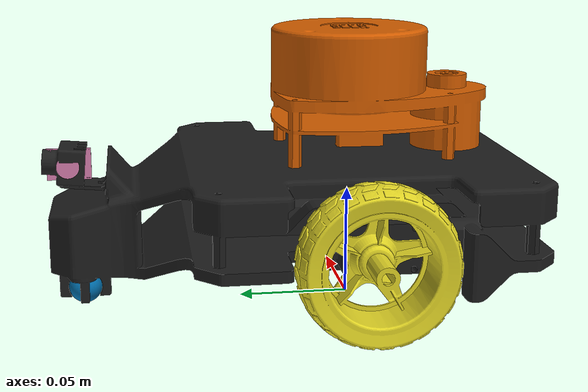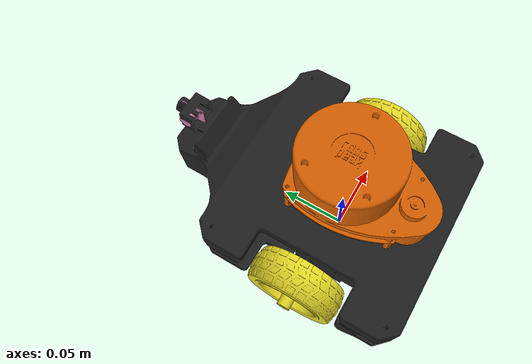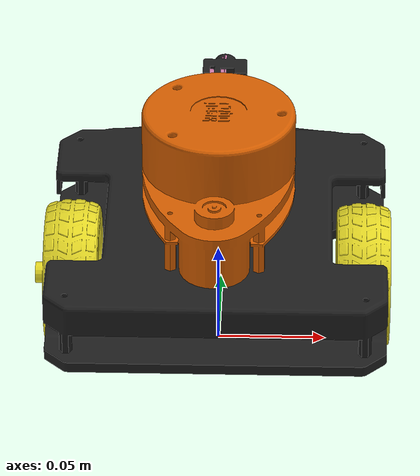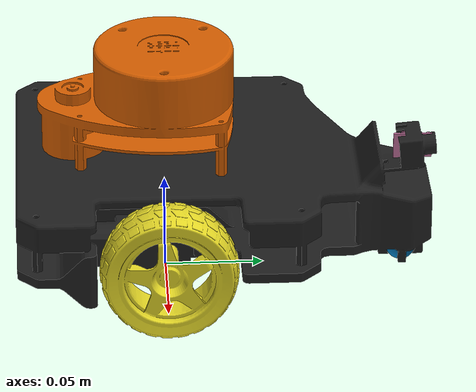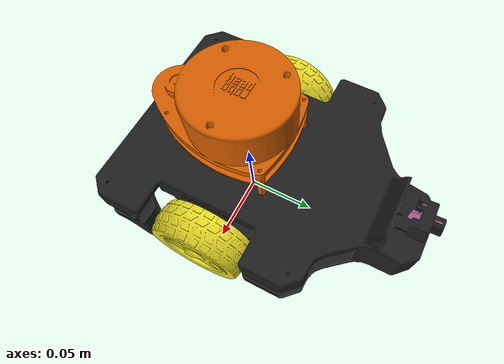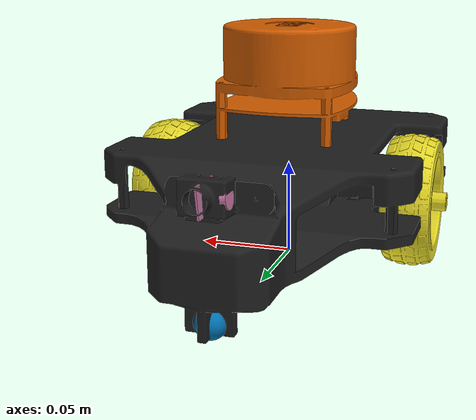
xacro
<?xml version="1.0"?>
<robot xmlns:xacro="http://www.ros.org/wiki/xacro" name="Putang">
    <xacro:include filename="$(find robot_description)/urdf/properties.xacro"/>
    <xacro:include filename="$(find robot_description)/urdf/chassis.xacro"/>
    <xacro:include filename="$(find robot_description)/urdf/wheel.xacro"/>
    <xacro:include filename="$(find robot_description)/urdf/caster.xacro"/>
    <xacro:include filename="$(find robot_description)/urdf/lidar.xacro"/>
    <xacro:include filename="$(find robot_description)/urdf/camera.xacro"/>
    <xacro:chassis/>
    <xacro:wheel
        name="left"
        translation="${WHEEL_SEPARATION /2} 0 0"
        rotation="0 0 ${PI}"
        parent="base_link"/>
    <xacro:wheel
        name="right"
        translation="${-WHEEL_SEPARATION /2} 0 0"
        rotation="0 0 ${PI}"
        parent="base_link"/>
    <xacro:caster
        name="ball"
        translation="0 0.121 -0.027"
        rotation="0 0 0"
        parent="base_link"/>
    <xacro:lidar_a
        translation="0 0 0.080"
        rotation="0 0 0"
        parent="base_link"/>
    <xacro:camera_a
        translation="0 0.126 0.0305"
        rotation="${PI/36} 0 ${PI/2}"
        parent="base_link"/>
    <gazebo>
        <plugin filename="libgazebo_ros_diff_drive.so" name="differential_drive_controller">
            <robotNamespace>/Putang</robotNamespace>
            <legacyMode>false</legacyMode>
            <alwaysOn>true</alwaysOn>
            <updateRate>50</updateRate>
            <leftJoint>left_wheel_joint</leftJoint>
            <rightJoint>right_wheel_joint</rightJoint>
            <wheelSeparation>${WHEEL_SEPARATION}</wheelSeparation>
            <wheelDiameter>${RB_WHEEL_R*2}</wheelDiameter>
            <torque>10</torque>
            <commandTopic>cmd_vel</commandTopic>
            <odometryTopic>odom</odometryTopic>
            <odometryFrame>odom</odometryFrame>
            <robotBaseFrame>base_footprint</robotBaseFrame>
            <publishWheelTF>false </publishWheelTF>
            <publishOdomTF>true</publishOdomTF>
            <publishWheelJointState>false</publishWheelJointState>
        </plugin>
    </gazebo>
</robot>

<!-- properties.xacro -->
<robot xmlns:xacro="http://www.ros.org/wiki/xacro" >

    <xacro:property name="PI" value = "3.1415926535897931"/>
    <xacro:property name="WHEEL_RADIUS" value = "0.035"/>

    <!--joint properties-->
    <xacro:property name="U_MAX" value="10.0"/>
    <xacro:property name="V_MAX" value="20.0"/>
    <xacro:property name="WHEEL_JOINT_DAMP" value="0.3"/>
    <xacro:property name="WHEEL_SEPARATION" value="0.135"/>
    <xacro:property name="RB_WHEEL_R" value="0.070"/>
    <xacro:property name="length_WHEEL" value="0.030"/>
    length

</robot>

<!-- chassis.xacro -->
<robot name="r_chassis" xmlns:xacro="http://www.ros.org/wiki/xacro">

    <xacro:include filename="$(find robot_description)/urdf/properties.xacro"/>

    <xacro:macro name="chassis" >
        <link name="base_footprint"/>

        <joint name="base_footprint_to_base_link" type = "fixed">
            <parent link="base_footprint"/>
            <child link="base_link"/>
            <origin xyz="0.0 0.0 0.035" rpy="0.0 0.0 0.0"/>
        </joint>

        <link name="base_link">
            <visual>
                <origin xyz="0 0 0" rpy="0.0 0.0 0.0"/>
                <geometry>
                    <mesh filename="package://robot_description/Mash/base_link.STL" scale="1 1 1"/>
                </geometry>
            </visual>
            <inertial>
                <origin xyz="0.0 0.0 0.0" rpy="0.0 0.0 0.0" />
                <mass value="0.83145" />
                <inertia
                   	ixx = "0.00306"	ixy = "0.00000"	ixz = "0.00000"
	                iyx = "0.00000"	iyy = "0.00141"	iyz = "0.00007"
                    izx = "0.00000"	izy = "0.00007"	izz = "0.00388" />
            </inertial>
            <collision>
                <!-- chassis collision -->
                <origin xyz="0.0 0.0 0" rpy="0.0 0.0 0"/>
                <geometry>
                    <mesh filename="package://robot_description/Mash/base_link.STL" scale="1 1 1"/>
                </geometry>
            </collision>
        </link>
        <gazebo reference="base_link">
            <material>Gazebo/Black</material>
        </gazebo>
    </xacro:macro>

</robot>

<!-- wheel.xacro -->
<robot xmlns:xacro="http://www.ros.org/wiki/xacro" name="r_wheel">
    <xacro:include filename="$(find robot_description)/urdf/properties.xacro"/>
    <xacro:macro name="wheel" params="name translation rotation parent">
        <link name="${name}_wheel">
            <visual>
                <origin xyz="0 0 0" rpy="0 0 0"/>
                <geometry>
                    <mesh filename="package://robot_description/Mash/WL_Link.STL" scale="1 1 1"/>
                </geometry>
            </visual>

            <collision>
                <origin xyz="0.0 0.0 0" rpy="0.0 ${PI/2} 0" />
                <geometry>
                    <cylinder radius="${RB_WHEEL_R/2}" length="${length_WHEEL}" />
                </geometry>
            </collision>
            <inertial>
                <origin xyz="0.0 0.0 0.0" rpy="0.0 0.0 0.0" />
                <mass value="0.02668" />
                <inertia
                    ixx = "0.00002"	ixy = "0.00000"	ixz = "0.00000"
	                iyx = "0.00000"	iyy = "0.00001"	iyz = "0.00000"
	                izx = "0.00000"	izy = "0.00000"	izz = "0.00001" />
            </inertial>
        </link>
        <joint name="${name}_wheel_joint" type="continuous">
            <origin xyz="${translation}" rpy="${rotation}"/>
            <parent link="${parent}"/>
            <child link="${name}_wheel"/>
            <axis xyz="1 0 0"/>
            <limit effort="${U_MAX}" velocity="${V_MAX}"/>
            <dynamics damping="${WHEEL_JOINT_DAMP}"/>

        </joint>
        <gazebo reference="${name}_wheel">
            <material>Gazebo/Yellow</material>
        </gazebo>
    </xacro:macro>
</robot>

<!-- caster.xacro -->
<robot xmlns:xacro="http://www.ros.org/wiki/xacro" name="Caster">
    <xacro:include filename="$(find robot_description)/urdf/properties.xacro"/>
    <xacro:macro name="caster" params="name translation rotation parent">
        <link name="${name}_caster">
            <visual>
                <origin xyz="0 0 0" rpy="0 0 0"/>
                <geometry>
                    <mesh filename="package://robot_description/Mash/Caster_Link.STL" scale="1 1 1"/>
                </geometry>
            </visual>
            <collision>
                <!-- ball wheel collision -->
                <origin xyz="0.0 0.0 0.0" rpy="0.0 0.0 0.0"/>
                <geometry>
                    <mesh filename="package://robot_description/Mash/Caster_Link.STL" scale="1 1 1"/>
                </geometry>
            </collision>
            <inertial>
                <origin xyz="0.0 0.0 0.0" rpy="0.0 0.0 0.0" />
                <mass value="0.00177" />
                <inertia ixx="0.0" ixy="0.0" ixz="0.0" iyy="0.0" iyz="0.0" izz="0.0" />
            </inertial>
        </link>
        <joint name="${name}_caster_joint" type="fixed">
            <origin xyz="${translation}" rpy="${rotation}"/>
            <parent link="${parent}"/>
            <child link="${name}_caster"/>
            <axis xyz="0 0 0"/>
            <limit effort="0" velocity="0"/>

        </joint>
    </xacro:macro>
</robot>

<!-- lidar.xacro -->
<robot xmlns:xacro="http://www.ros.org/wiki/xacro" name="r_lidar">
    <xacro:include filename="$(find robot_description)/urdf/properties.xacro"/>
    <xacro:macro name="lidar_a" params="translation rotation parent ">
        <link name="lidar">
            <inertial>
                <origin xyz="0.0 0.0 0.0" rpy="0.0 0.0 0.0" />
                <mass value="0.1" />
                <inertia
                    ixx = "0.00123"	ixy = "0.00001"	ixz = "0.00001"
	                iyx = "0.00001"	iyy = "0.00082"	iyz = "0.00027"
	                izx = "0.00001"	izy = "0.00027"	izz = "0.00116"/>
            </inertial>
            <collision>
                <!-- lidar collision -->
                <origin xyz="0.0 0.0 0.0" rpy="0.0 0.0 0.0"/>
                <geometry>
                    <mesh filename="package://robot_description/Mash/lidar_Link.STL" scale="1 1 1"/>
                </geometry>
            </collision>
            <visual>
                <origin xyz="0 0 0" rpy="0 0 0"/>
                <geometry>
                    <mesh filename="package://robot_description/Mash/lidar_Link.STL" scale="1 1 1"/>
                </geometry>
            </visual>
        </link>
        <joint name="chassis_lidar" type="fixed">
            <origin xyz="${translation}" rpy="${rotation}" />
            <parent link="${parent}" />
            <child link="lidar" />
        </joint>
        <!-- hokuyo -->
        <gazebo reference="lidar">
            <sensor type="ray" name="head_hokuyo_sensor">
            <pose>0 0 0 0 0 0</pose>
            <visualize>true</visualize>
            <update_rate>40</update_rate>
            <ray>
                <scan>
                    <horizontal>
                        <samples>720</samples>
                        <resolution>1</resolution>
                        <min_angle>${-PI}</min_angle>
                        <max_angle>${PI}</max_angle>
                    </horizontal>
                </scan>
                <range>
                    <min>0.10</min>
                    <max>5.0</max>
                    <resolution>0.01</resolution>
                </range>
                <noise>
                    <type>gaussian</type>
                    <mean>0.0</mean>
                    <stddev>0.01</stddev>
                </noise>
            </ray>
            <plugin name="gazebo_ros_head_hokuyo_controller" filename="libgazebo_ros_laser.so">
                <topicName>/Putang/laser/scan</topicName>
                <frameName>lidar</frameName>
            </plugin>
            </sensor>
        </gazebo>
    </xacro:macro>

</robot>

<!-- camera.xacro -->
<robot xmlns:xacro="http://www.ros.org/wiki/xacro" name="r_camera">
    <xacro:include filename="$(find robot_description)/urdf/properties.xacro"/>
    <xacro:macro name="camera_a" params="translation rotation parent">
        <link name="camera">
            <inertial>
                <origin xyz="0.0 0.0 0.0" rpy="0.0 0.0 0.0" />
                <mass value="0.1" />
                <inertia ixx="0.0" ixy="0.0" ixz="0.0" iyy="0.0" iyz="0.0" izz="0.0" />
            </inertial>
            <collision>
                <!-- camera collision -->
                <origin xyz="0.0 0.0 0.0" rpy="0.0 0.0 0.0"/>
                <geometry>
                    <mesh filename="package://robot_description/Mash/camera_Link.STL" scale="1 1 1"/>
                </geometry>
            </collision>
            <visual>
                <origin xyz="0 0 0" rpy="0 0 0"/>
                <geometry>
                    <mesh filename="package://robot_description/Mash/camera_Link.STL" scale="1 1 1"/>
                </geometry>
            </visual>
        </link>
        <joint name="chassis_camera" type="fixed">
            <origin xyz="${translation}" rpy="${rotation}" />
            <parent link="${parent}" />
            <child link="camera" />
        </joint>

        <!-- camera -->
        <gazebo reference="camera">
            <sensor type="camera" name="camera1">
                <update_rate>30.0</update_rate>
                <camera name="head">
                    <horizontal_fov>1.3962634</horizontal_fov>
                    <image>
                        <width>800</width>
                        <height>800</height>
                        <format>R8G8B8</format>
                    </image>
                    <clip>
                        <near>0.02</near>
                        <far>300</far>
                    </clip>
                    <noise>
                        <type>gaussian</type>
                        <mean>0.0</mean>
                        <stddev>0.007</stddev>
                    </noise>
                </camera>
                <plugin name="camera_controller" filename="libgazebo_ros_camera.so">
                    <alwaysOn>true</alwaysOn>
                    <updateRate>0.0</updateRate>
                    <cameraName>Putang/camera1</cameraName>
                    <imageTopicName>image_raw</imageTopicName>
                    <cameraInfoTopicName>camera_info</cameraInfoTopicName>
                    <frameName>camera</frameName>
                    <hackBaseline>0.07</hackBaseline>
                    <distortionK1>0.0</distortionK1>
                    <distortionK2>0.0</distortionK2>
                    <distortionK3>0.0</distortionK3>
                    <distortionT1>0.0</distortionT1>
                    <distortionT2>0.0</distortionT2>
                </plugin>
            </sensor>
        </gazebo>
    </xacro:macro>
</robot>
